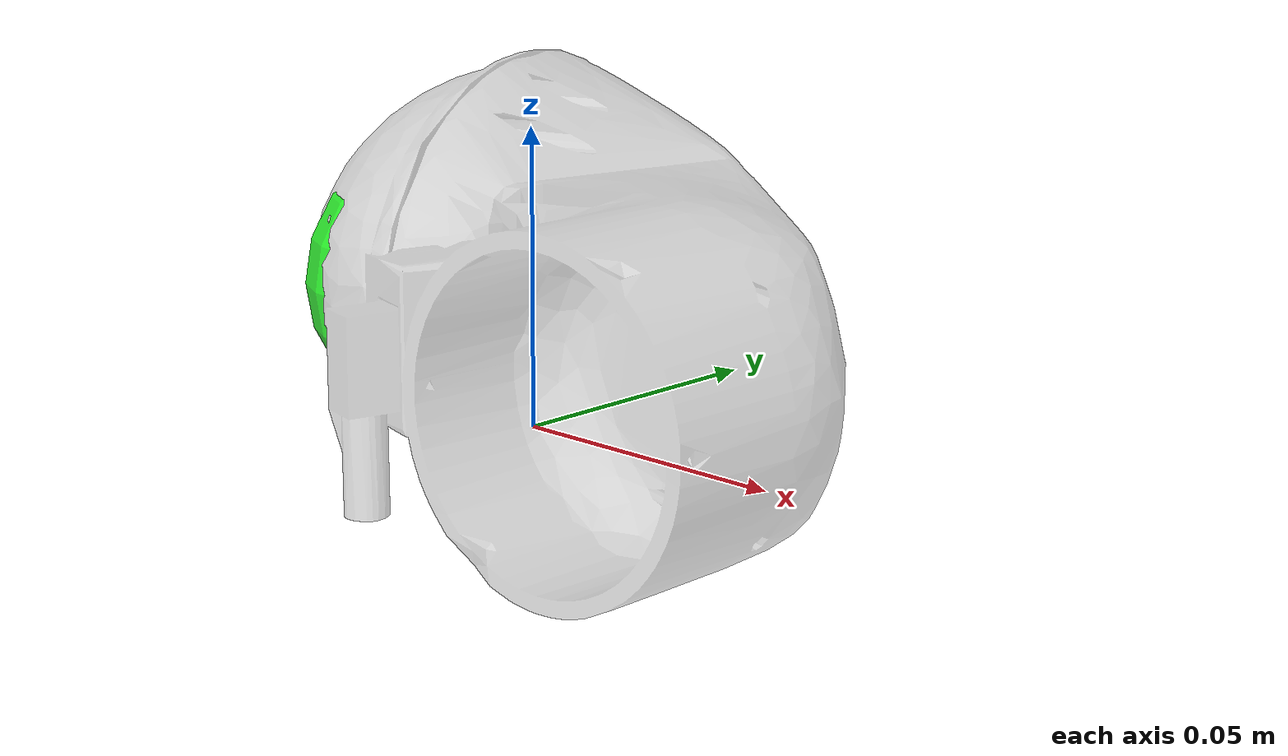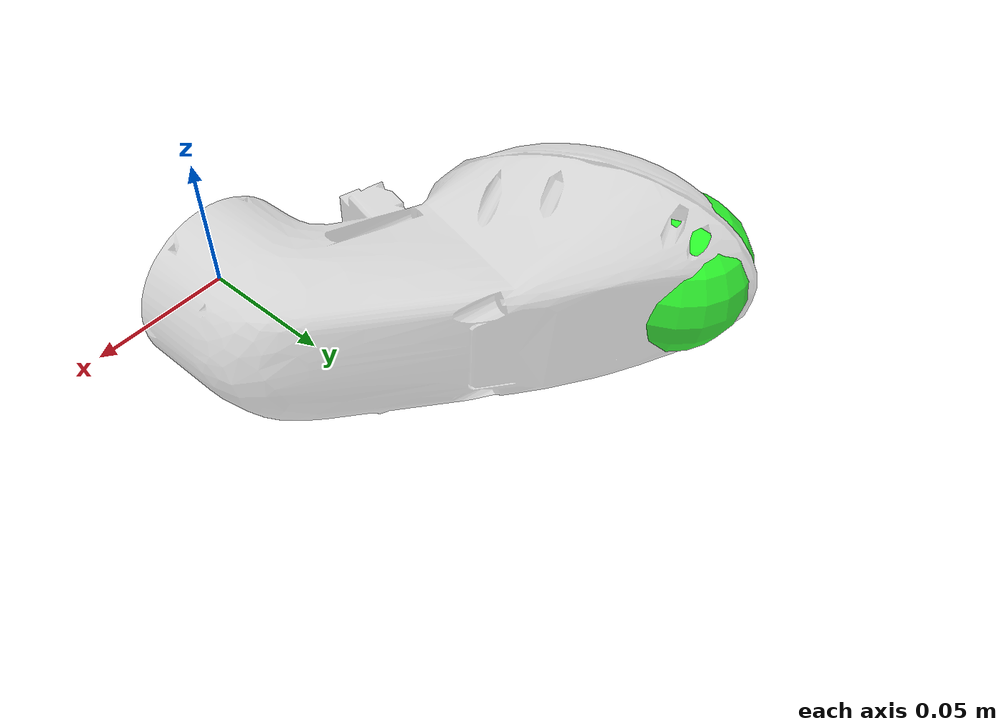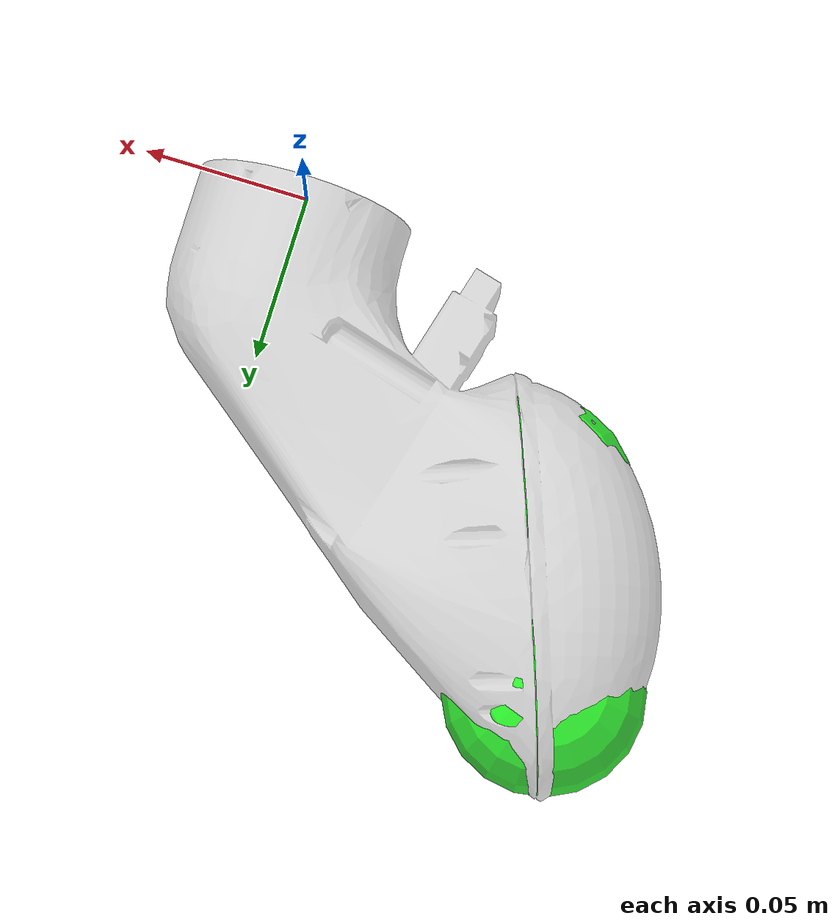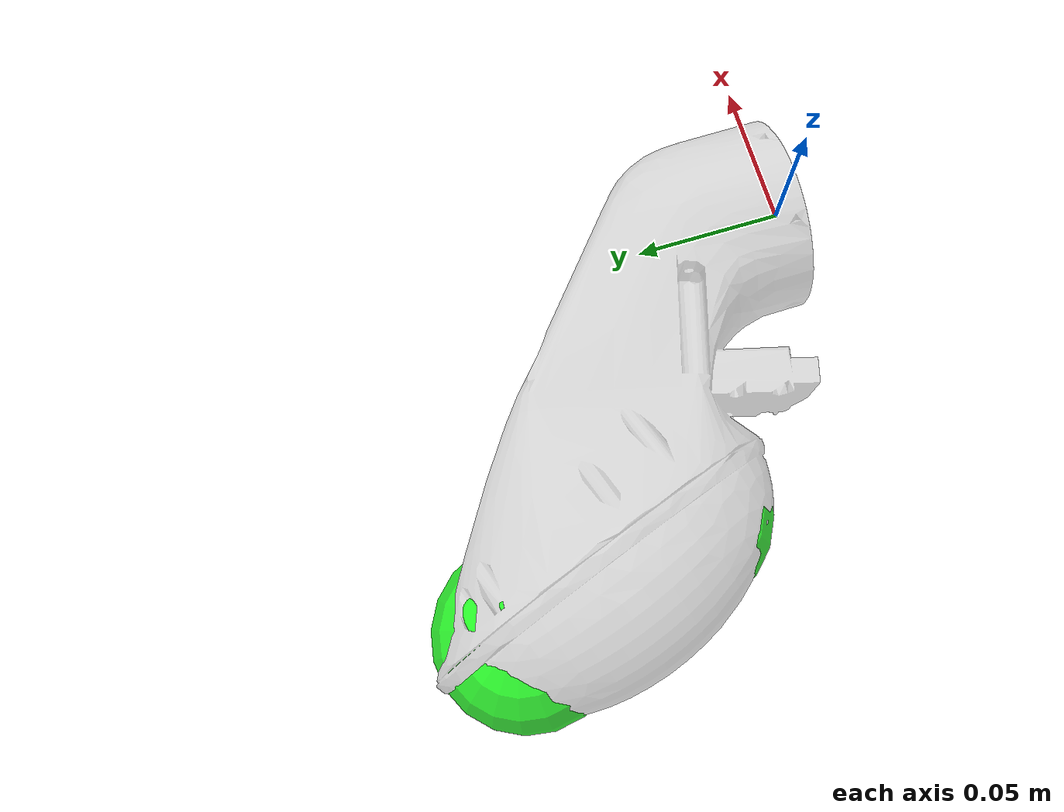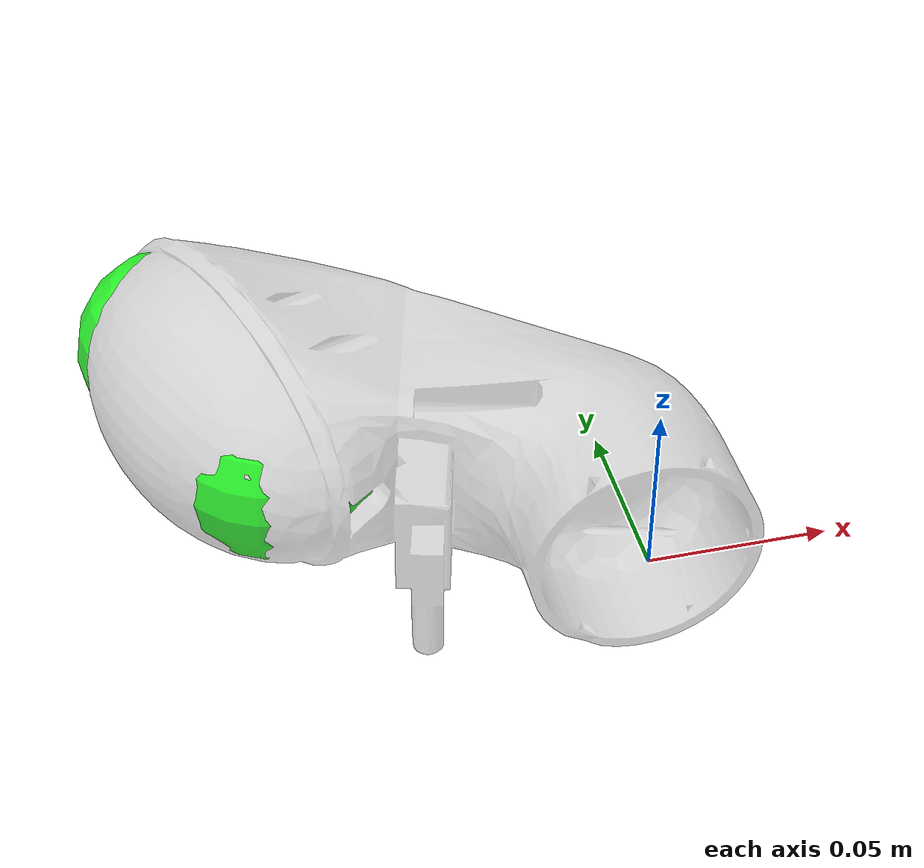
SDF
<?xml version="1.0" ?>
<!-- |    This document was autogenerated by xacro from jaco_bubble_picoflexx_paw_hydro.sdf.xacro | -->
<!-- |    EDITING THIS FILE BY HAND IS NOT RECOMMENDED                                 | -->
<sdf version="1.7" xmlns:drake="https://drake.mit.edu">
  <model name="jaco_bubble_picoflexx_paw">
    <link name="gripper">
      <inertial>
        <mass>0.001</mass>
      </inertial>
    </link>
    <link name="jaco_bubble_fist_body">
      <pose relative_to="gripper">0.0 0.0 0 0 0 0</pose>
      <inertial>
        <!-- Inertial values are approximate and calculated for a
               cylinder of radius 35mm, height 110mm and mass 270gms -->
        <pose>-0.05 0.07 0 1.5707 0 0.85</pose>
        <mass>0.27</mass>
        <inertia>
          <ixx>0.000355</ixx>
          <ixy>0</ixy>
          <ixz>0</ixz>
          <iyy>0.000355</iyy>
          <iyz>0</iyz>
          <izz>0.000165</izz>
        </inertia>
      </inertial>
      <visual name="base_visual">
        <pose>0 0 0 0 0 0</pose>
        <geometry>
          <mesh>
            <scale>1 1 1</scale>
            <uri>paw_combined_35mmbubble_5k.obj</uri>
          </mesh>
        </geometry>
        <material>
          <ambient>0.3 0.3 0.3 1</ambient>
          <diffuse>0.7 0.7 0.7 0.5</diffuse>
          <specular>0.001 0.001 0.001 1</specular>
          <emissive>0 0 0 1</emissive>
        </material>
      </visual>

      <collision name="bubble_1">
        <pose>-0.11 0.12 0 0 0 0</pose>pose&gt;
        <geometry>
          <sphere>
            <radius>0.03</radius>
          </sphere>
        </geometry>geometry&gt;
        <drake:proximity_properties>
          <drake:mesh_resolution_hint>0.01</drake:mesh_resolution_hint>
          <drake:compliant_hydroelastic/>
          <drake:hydroelastic_modulus>5e7</drake:hydroelastic_modulus>
          <drake:hunt_crossley_dissipation>1.25</drake:hunt_crossley_dissipation>
          <drake:mu_dynamic>1.0</drake:mu_dynamic>
          <drake:mu_static>1.0</drake:mu_static>
        </drake:proximity_properties>
      </collision>
      <visual name="bubble_1">
        <pose>-0.11 0.12 0 0 0 0</pose>pose&gt;
        <geometry>
          <sphere>
            <radius>0.03</radius>
          </sphere>
        </geometry>geometry&gt;
        <material>
          <diffuse>0 1 0 0.8</diffuse>
        </material>
      </visual>

      <collision name="bubble_2">
        <pose>-0.09 0.065 0 0 0 0</pose>pose&gt;
        <geometry>
          <sphere>
            <radius>0.03</radius>
          </sphere>
        </geometry>geometry&gt;
        <drake:proximity_properties>
          <drake:mesh_resolution_hint>0.01</drake:mesh_resolution_hint>
          <drake:compliant_hydroelastic/>
          <drake:hydroelastic_modulus>5e7</drake:hydroelastic_modulus>
          <drake:hunt_crossley_dissipation>1.25</drake:hunt_crossley_dissipation>
          <drake:mu_dynamic>1.0</drake:mu_dynamic>
          <drake:mu_static>1.0</drake:mu_static>
        </drake:proximity_properties>
      </collision>
      <visual name="bubble_2">
        <pose>-0.09 0.065 0 0 0 0</pose>pose&gt;
        <geometry>
          <sphere>
            <radius>0.03</radius>
          </sphere>
        </geometry>geometry&gt;
        <material>
          <diffuse>0 1 0 0.8</diffuse>
        </material>
      </visual>
    </link>
    <joint name="adapter_joint" type="fixed">
      <child>jaco_bubble_fist_body</child>
      <parent>gripper</parent>
    </joint>
    <frame name="bubble_base_center">
      <pose relative_to="gripper">-0.1 0.09 0 1.5707 0 1.91986</pose>
    </frame>
    <frame name="picoflexx_camera_center">
      <pose relative_to="gripper">-0.04685 0.06678 0 1.5707 0 4.45059</pose>
    </frame>
    <frame name="grasp_frame">
      <pose relative_to="bubble_base_center">0 0 0 0 0 0</pose>
    </frame>
  </model>
</sdf>
